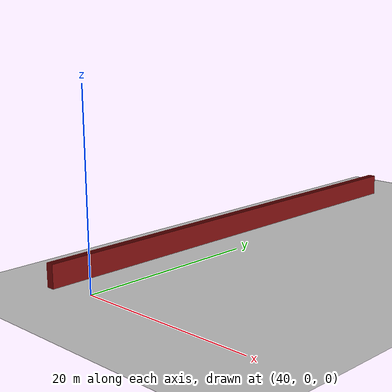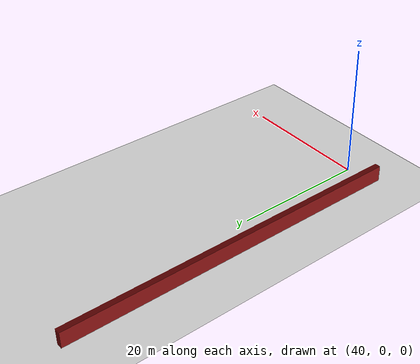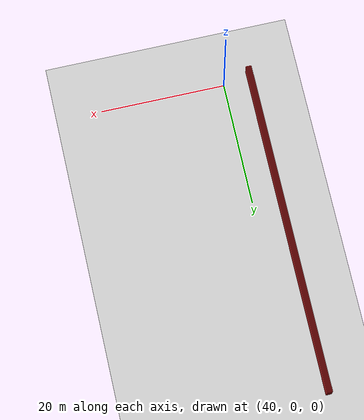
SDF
<sdf version="1.4">
 <world name="1_wall">
  <model name="ground_plane">
   <static>1</static>
   <link name="link">
    <collision name="collision">
     <geometry><plane><normal>0 0 1</normal><size>1000 1000</size></plane></geometry>
     <surface><friction><ode><mu>100</mu><mu2>50</mu2></ode></friction></surface>
    </collision>
    <visual name="visual">
     <cast_shadows>0</cast_shadows>
     <geometry><plane><normal>0 0 1</normal><size>10000 10000</size></plane></geometry>
     <material>
      <script><uri>file://media/materials/scripts/gazebo.material</uri><name>Gazebo/Grey</name></script>
     </material>
    </visual>
    <velocity_decay><linear>0</linear><angular>0</angular></velocity_decay>
   </link>
  </model>
  <model name="Wall_734">
   <static>1</static>
   <link name="Wall_734">
    <collision name="Wall_Collision_734">
     <geometry><box><size>53.65 0.05 2.5</size></box></geometry>
     <pose>0 0 1.25 0 -0 0</pose>
    </collision>
    <visual name="Wall_Visual_734">
     <pose>0 0 1.25 0 -0 0</pose>
     <geometry><box><size>53.65 0.05 2.5</size></box></geometry>
     <material>
      <script><uri>file://media/materials/scripts/gazebo.material</uri><name>Gazebo/Red</name></script>
     </material>
    </visual>
    <velocity_decay><linear>0</linear><angular>0</angular></velocity_decay>
    <pose>35.2 25.3 0 0 0 1.5707963267948966</pose>
   </link>
  </model>
  <model name="Wall_735">
   <static>1</static>
   <link name="Wall_735">
    <collision name="Wall_Collision_735">
     <geometry><box><size>53.65 0.05 2.5</size></box></geometry>
     <pose>0 0 1.25 0 -0 0</pose>
    </collision>
    <visual name="Wall_Visual_735">
     <pose>0 0 1.25 0 -0 0</pose>
     <geometry><box><size>53.65 0.05 2.5</size></box></geometry>
     <material>
      <script><uri>file://media/materials/scripts/gazebo.material</uri><name>Gazebo/Red</name></script>
     </material>
    </visual>
    <velocity_decay><linear>0</linear><angular>0</angular></velocity_decay>
    <pose>35.25 25.3 0 0 0 1.5707963267948966</pose>
   </link>
  </model>
  <model name="Wall_736">
   <static>1</static>
   <link name="Wall_736">
    <collision name="Wall_Collision_736">
     <geometry><box><size>53.65 0.05 2.5</size></box></geometry>
     <pose>0 0 1.25 0 -0 0</pose>
    </collision>
    <visual name="Wall_Visual_736">
     <pose>0 0 1.25 0 -0 0</pose>
     <geometry><box><size>53.65 0.05 2.5</size></box></geometry>
     <material>
      <script><uri>file://media/materials/scripts/gazebo.material</uri><name>Gazebo/Red</name></script>
     </material>
    </visual>
    <velocity_decay><linear>0</linear><angular>0</angular></velocity_decay>
    <pose>35.3 25.3 0 0 0 1.5707963267948966</pose>
   </link>
  </model>
  <model name="Wall_737">
   <static>1</static>
   <link name="Wall_737">
    <collision name="Wall_Collision_737">
     <geometry><box><size>53.65 0.05 2.5</size></box></geometry>
     <pose>0 0 1.25 0 -0 0</pose>
    </collision>
    <visual name="Wall_Visual_737">
     <pose>0 0 1.25 0 -0 0</pose>
     <geometry><box><size>53.65 0.05 2.5</size></box></geometry>
     <material>
      <script><uri>file://media/materials/scripts/gazebo.material</uri><name>Gazebo/Red</name></script>
     </material>
    </visual>
    <velocity_decay><linear>0</linear><angular>0</angular></velocity_decay>
    <pose>35.35 25.3 0 0 0 1.5707963267948966</pose>
   </link>
  </model>
  <model name="Wall_738">
   <static>1</static>
   <link name="Wall_738">
    <collision name="Wall_Collision_738">
     <geometry><box><size>53.65 0.05 2.5</size></box></geometry>
     <pose>0 0 1.25 0 -0 0</pose>
    </collision>
    <visual name="Wall_Visual_738">
     <pose>0 0 1.25 0 -0 0</pose>
     <geometry><box><size>53.65 0.05 2.5</size></box></geometry>
     <material>
      <script><uri>file://media/materials/scripts/gazebo.material</uri><name>Gazebo/Red</name></script>
     </material>
    </visual>
    <velocity_decay><linear>0</linear><angular>0</angular></velocity_decay>
    <pose>35.4 25.3 0 0 0 1.5707963267948966</pose>
   </link>
  </model>
  <model name="Wall_739">
   <static>1</static>
   <link name="Wall_739">
    <collision name="Wall_Collision_739">
     <geometry><box><size>53.65 0.05 2.5</size></box></geometry>
     <pose>0 0 1.25 0 -0 0</pose>
    </collision>
    <visual name="Wall_Visual_739">
     <pose>0 0 1.25 0 -0 0</pose>
     <geometry><box><size>53.65 0.05 2.5</size></box></geometry>
     <material>
      <script><uri>file://media/materials/scripts/gazebo.material</uri><name>Gazebo/Red</name></script>
     </material>
    </visual>
    <velocity_decay><linear>0</linear><angular>0</angular></velocity_decay>
    <pose>35.45 25.3 0 0 0 1.5707963267948966</pose>
   </link>
  </model>
  <model name="Wall_740">
   <static>1</static>
   <link name="Wall_740">
    <collision name="Wall_Collision_740">
     <geometry><box><size>53.65 0.05 2.5</size></box></geometry>
     <pose>0 0 1.25 0 -0 0</pose>
    </collision>
    <visual name="Wall_Visual_740">
     <pose>0 0 1.25 0 -0 0</pose>
     <geometry><box><size>53.65 0.05 2.5</size></box></geometry>
     <material>
      <script><uri>file://media/materials/scripts/gazebo.material</uri><name>Gazebo/Red</name></script>
     </material>
    </visual>
    <velocity_decay><linear>0</linear><angular>0</angular></velocity_decay>
    <pose>35.5 25.3 0 0 0 1.5707963267948966</pose>
   </link>
  </model>
  <model name="Wall_741">
   <static>1</static>
   <link name="Wall_741">
    <collision name="Wall_Collision_741">
     <geometry><box><size>53.65 0.05 2.5</size></box></geometry>
     <pose>0 0 1.25 0 -0 0</pose>
    </collision>
    <visual name="Wall_Visual_741">
     <pose>0 0 1.25 0 -0 0</pose>
     <geometry><box><size>53.65 0.05 2.5</size></box></geometry>
     <material>
      <script><uri>file://media/materials/scripts/gazebo.material</uri><name>Gazebo/Red</name></script>
     </material>
    </visual>
    <velocity_decay><linear>0</linear><angular>0</angular></velocity_decay>
    <pose>35.55 25.3 0 0 0 1.5707963267948966</pose>
   </link>
  </model>
  <model name="Wall_742">
   <static>1</static>
   <link name="Wall_742">
    <collision name="Wall_Collision_742">
     <geometry><box><size>53.65 0.05 2.5</size></box></geometry>
     <pose>0 0 1.25 0 -0 0</pose>
    </collision>
    <visual name="Wall_Visual_742">
     <pose>0 0 1.25 0 -0 0</pose>
     <geometry><box><size>53.65 0.05 2.5</size></box></geometry>
     <material>
      <script><uri>file://media/materials/scripts/gazebo.material</uri><name>Gazebo/Red</name></script>
     </material>
    </visual>
    <velocity_decay><linear>0</linear><angular>0</angular></velocity_decay>
    <pose>35.6 25.3 0 0 0 1.5707963267948966</pose>
   </link>
  </model>
  <model name="Wall_743">
   <static>1</static>
   <link name="Wall_743">
    <collision name="Wall_Collision_743">
     <geometry><box><size>53.65 0.05 2.5</size></box></geometry>
     <pose>0 0 1.25 0 -0 0</pose>
    </collision>
    <visual name="Wall_Visual_743">
     <pose>0 0 1.25 0 -0 0</pose>
     <geometry><box><size>53.65 0.05 2.5</size></box></geometry>
     <material>
      <script><uri>file://media/materials/scripts/gazebo.material</uri><name>Gazebo/Red</name></script>
     </material>
    </visual>
    <velocity_decay><linear>0</linear><angular>0</angular></velocity_decay>
    <pose>35.65 25.3 0 0 0 1.5707963267948966</pose>
   </link>
  </model>
  <model name="Wall_744">
   <static>1</static>
   <link name="Wall_744">
    <collision name="Wall_Collision_744">
     <geometry><box><size>53.65 0.05 2.5</size></box></geometry>
     <pose>0 0 1.25 0 -0 0</pose>
    </collision>
    <visual name="Wall_Visual_744">
     <pose>0 0 1.25 0 -0 0</pose>
     <geometry><box><size>53.65 0.05 2.5</size></box></geometry>
     <material>
      <script><uri>file://media/materials/scripts/gazebo.material</uri><name>Gazebo/Red</name></script>
     </material>
    </visual>
    <velocity_decay><linear>0</linear><angular>0</angular></velocity_decay>
    <pose>35.7 25.3 0 0 0 1.5707963267948966</pose>
   </link>
  </model>
  <model name="Wall_745">
   <static>1</static>
   <link name="Wall_745">
    <collision name="Wall_Collision_745">
     <geometry><box><size>53.65 0.05 2.5</size></box></geometry>
     <pose>0 0 1.25 0 -0 0</pose>
    </collision>
    <visual name="Wall_Visual_745">
     <pose>0 0 1.25 0 -0 0</pose>
     <geometry><box><size>53.65 0.05 2.5</size></box></geometry>
     <material>
      <script><uri>file://media/materials/scripts/gazebo.material</uri><name>Gazebo/Red</name></script>
     </material>
    </visual>
    <velocity_decay><linear>0</linear><angular>0</angular></velocity_decay>
    <pose>35.75 25.3 0 0 0 1.5707963267948966</pose>
   </link>
  </model>
  <model name="Wall_746">
   <static>1</static>
   <link name="Wall_746">
    <collision name="Wall_Collision_746">
     <geometry><box><size>53.65 0.05 2.5</size></box></geometry>
     <pose>0 0 1.25 0 -0 0</pose>
    </collision>
    <visual name="Wall_Visual_746">
     <pose>0 0 1.25 0 -0 0</pose>
     <geometry><box><size>53.65 0.05 2.5</size></box></geometry>
     <material>
      <script><uri>file://media/materials/scripts/gazebo.material</uri><name>Gazebo/Red</name></script>
     </material>
    </visual>
    <velocity_decay><linear>0</linear><angular>0</angular></velocity_decay>
    <pose>35.8 25.3 0 0 0 1.5707963267948966</pose>
   </link>
  </model>
  <model name="Wall_747">
   <static>1</static>
   <link name="Wall_747">
    <collision name="Wall_Collision_747">
     <geometry><box><size>53.65 0.05 2.5</size></box></geometry>
     <pose>0 0 1.25 0 -0 0</pose>
    </collision>
    <visual name="Wall_Visual_747">
     <pose>0 0 1.25 0 -0 0</pose>
     <geometry><box><size>53.65 0.05 2.5</size></box></geometry>
     <material>
      <script><uri>file://media/materials/scripts/gazebo.material</uri><name>Gazebo/Red</name></script>
     </material>
    </visual>
    <velocity_decay><linear>0</linear><angular>0</angular></velocity_decay>
    <pose>35.85 25.3 0 0 0 1.5707963267948966</pose>
   </link>
  </model>
  <model name="Wall_748">
   <static>1</static>
   <link name="Wall_748">
    <collision name="Wall_Collision_748">
     <geometry><box><size>53.65 0.05 2.5</size></box></geometry>
     <pose>0 0 1.25 0 -0 0</pose>
    </collision>
    <visual name="Wall_Visual_748">
     <pose>0 0 1.25 0 -0 0</pose>
     <geometry><box><size>53.65 0.05 2.5</size></box></geometry>
     <material>
      <script><uri>file://media/materials/scripts/gazebo.material</uri><name>Gazebo/Red</name></script>
     </material>
    </visual>
    <velocity_decay><linear>0</linear><angular>0</angular></velocity_decay>
    <pose>35.9 25.3 0 0 0 1.5707963267948966</pose>
   </link>
  </model>
  <model name="Wall_749">
   <static>1</static>
   <link name="Wall_749">
    <collision name="Wall_Collision_749">
     <geometry><box><size>53.65 0.05 2.5</size></box></geometry>
     <pose>0 0 1.25 0 -0 0</pose>
    </collision>
    <visual name="Wall_Visual_749">
     <pose>0 0 1.25 0 -0 0</pose>
     <geometry><box><size>53.65 0.05 2.5</size></box></geometry>
     <material>
      <script><uri>file://media/materials/scripts/gazebo.material</uri><name>Gazebo/Red</name></script>
     </material>
    </visual>
    <velocity_decay><linear>0</linear><angular>0</angular></velocity_decay>
    <pose>35.95 25.3 0 0 0 1.5707963267948966</pose>
   </link>
  </model>
  <model name="Wall_750">
   <static>1</static>
   <link name="Wall_750">
    <collision name="Wall_Collision_750">
     <geometry><box><size>53.65 0.05 2.5</size></box></geometry>
     <pose>0 0 1.25 0 -0 0</pose>
    </collision>
    <visual name="Wall_Visual_750">
     <pose>0 0 1.25 0 -0 0</pose>
     <geometry><box><size>53.65 0.05 2.5</size></box></geometry>
     <material>
      <script><uri>file://media/materials/scripts/gazebo.material</uri><name>Gazebo/Red</name></script>
     </material>
    </visual>
    <velocity_decay><linear>0</linear><angular>0</angular></velocity_decay>
    <pose>36.0 25.3 0 0 0 1.5707963267948966</pose>
   </link>
  </model>
  <model name="Wall_751">
   <static>1</static>
   <link name="Wall_751">
    <collision name="Wall_Collision_751">
     <geometry><box><size>53.65 0.05 2.5</size></box></geometry>
     <pose>0 0 1.25 0 -0 0</pose>
    </collision>
    <visual name="Wall_Visual_751">
     <pose>0 0 1.25 0 -0 0</pose>
     <geometry><box><size>53.65 0.05 2.5</size></box></geometry>
     <material>
      <script><uri>file://media/materials/scripts/gazebo.material</uri><name>Gazebo/Red</name></script>
     </material>
    </visual>
    <velocity_decay><linear>0</linear><angular>0</angular></velocity_decay>
    <pose>36.05 25.3 0 0 0 1.5707963267948966</pose>
   </link>
  </model>
 </world>
</sdf>
